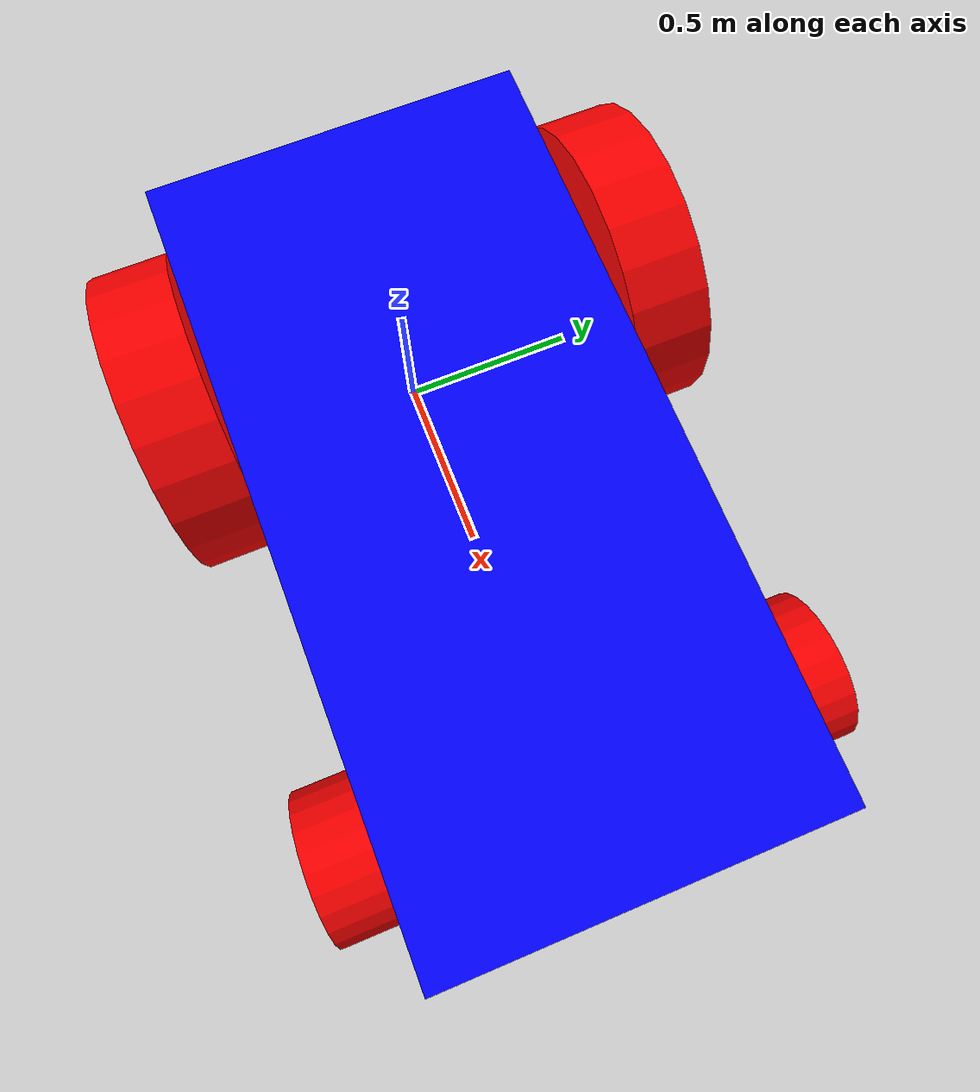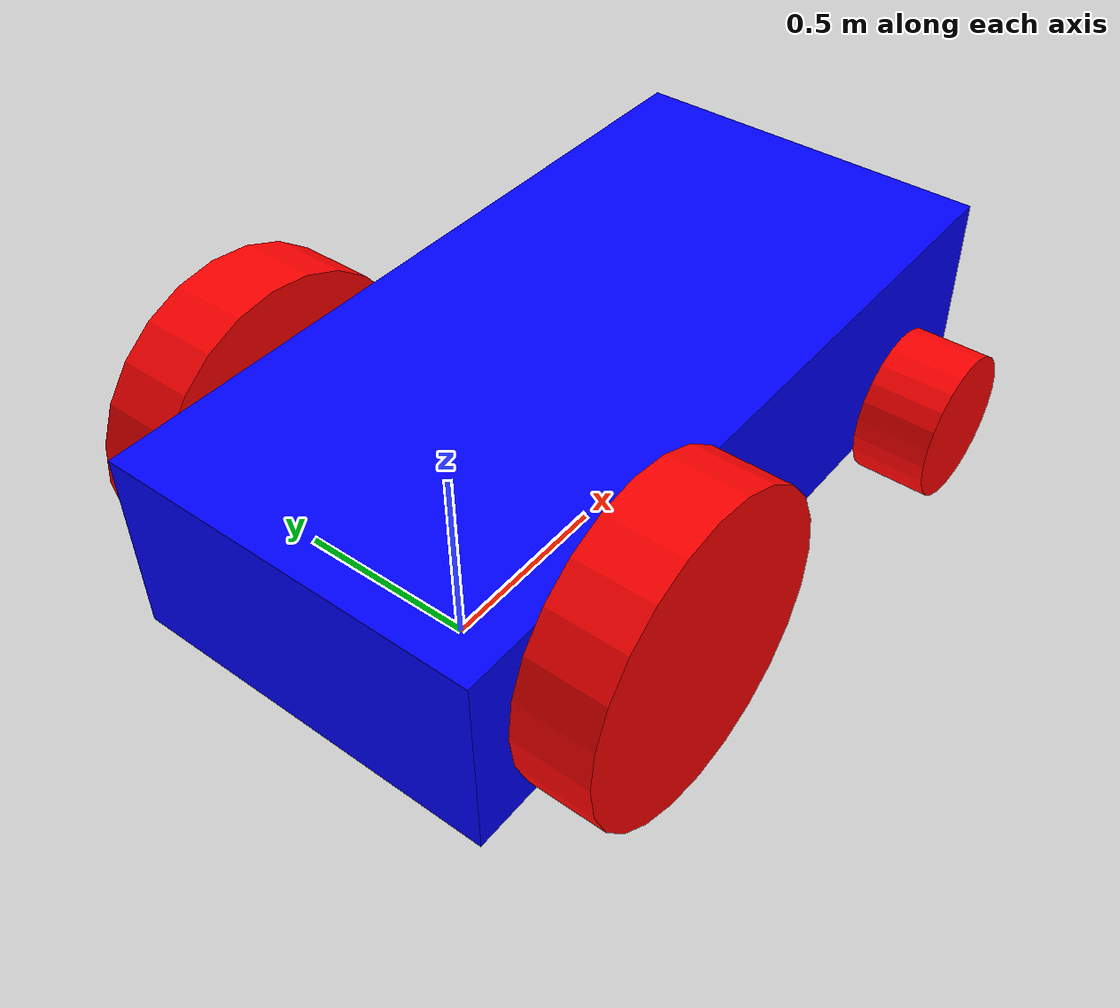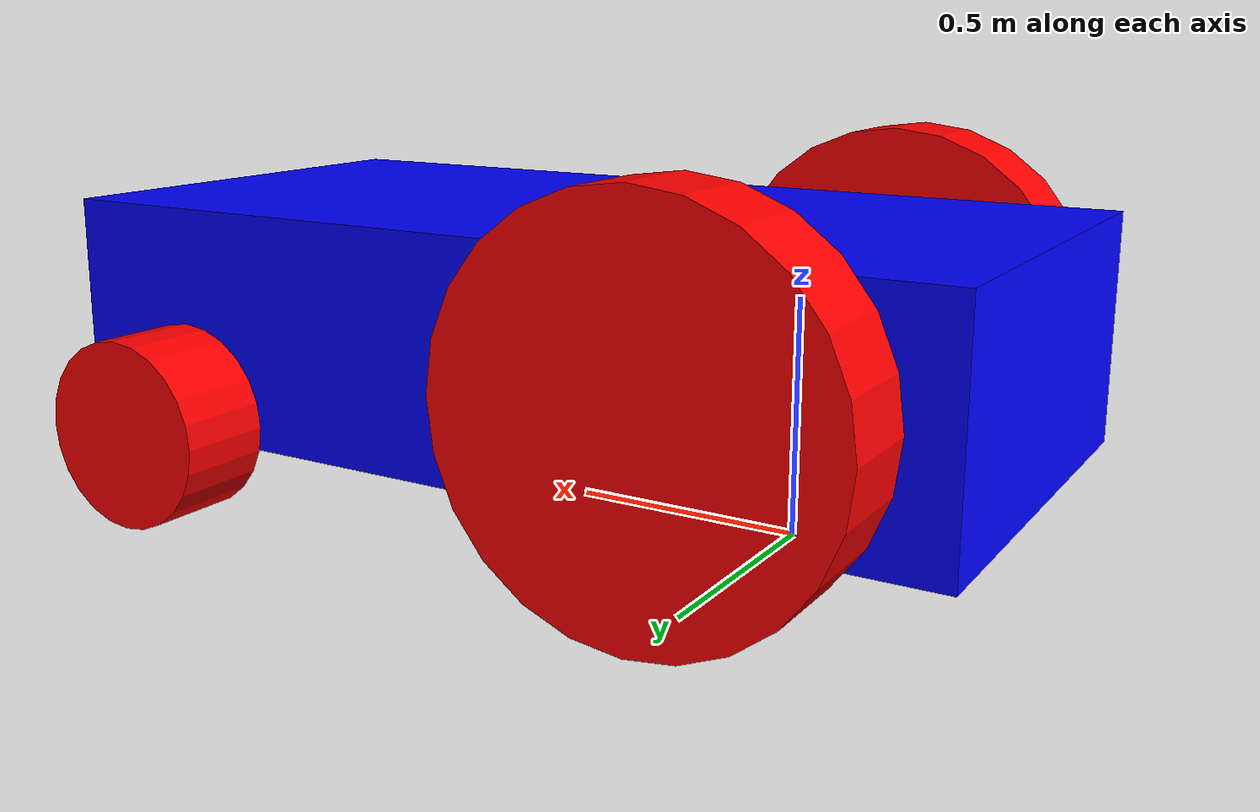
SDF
<?xml version="1.0"?>
<sdf version="1.10">
    <model name='vehicle_blue' canonical_link='chassis'>
        <plugin filename="gz-sim-joint-state-publisher-system"
            name="gz::sim::systems::JointStatePublisher">
            <topic>joint_states</topic>
            <joint_name>right_wheel_joint</joint_name>
            <joint_name>left_wheel_joint</joint_name>
            <joint_name>front_left_wheel_joint</joint_name>
            <joint_name>front_right_wheel_joint</joint_name>
        </plugin>
        <plugin
            filename="gz-sim-diff-drive-system"
            name="gz::sim::systems::DiffDrive">
            <left_joint>left_wheel_joint</left_joint>
            <right_joint>right_wheel_joint</right_joint>
            <wheel_separation>1.2</wheel_separation>
            <wheel_radius>0.4</wheel_radius>
            <odom_publish_frequency>1</odom_publish_frequency>
            <topic>cmd_vel</topic>
        </plugin>
        <plugin filename="gz-sim-imu-system"
            name="gz::sim::systems::Imu">
        </plugin>
        <!--chassis-->
        <link name='chassis'>
            <pose relative_to='__model__'>0.5 0 0.4 0 0 0</pose>
            <inertial> <!--inertial
            properties of the link mass, inertia matix-->
                <mass>10.14395</mass>
                <inertia>
                    <ixx>0.095329</ixx>
                    <ixy>0</ixy>
                    <ixz>0</ixz>
                    <iyy>0.381317</iyy>
                    <iyz>0</iyz>
                    <izz>0.476646</izz>
                </inertia>
            </inertial>
            <visual name='visual'>
                <geometry>
                    <box>
                        <size>2.0 1.0 0.5</size>
                    </box>
                </geometry>
                <!--Color
            of the link-->
                <material>
                    <ambient>0.0 0.0 1.0 1</ambient>
                    <diffuse>0.0 0.0 1.0 1</diffuse>
                    <specular>0.0 0.0 1.0 1</specular>
                </material>
            </visual>
            <collision name='collision'>
                <geometry>
                    <box>
                        <size>2.0 1.0 0.5</size>
                    </box>
                </geometry>
            </collision>
        </link>

        <!--Left
    wheel-->
        <link name='left_wheel'>
            <pose relative_to="chassis">-0.5 0.6 0 -1.5707 0 0</pose> <!--angles
        are in radian-->
            <inertial>
                <mass>2</mass>
                <inertia>
                    <ixx>0.043333</ixx>
                    <ixy>0</ixy>
                    <ixz>0</ixz>
                    <iyy>0.043333</iyy>
                    <iyz>0</iyz>
                    <izz>0.08</izz>
                </inertia>
            </inertial>
            <visual name='visual'>
                <geometry>
                    <cylinder>
                        <radius>0.4</radius>
                        <length>0.2</length>
                    </cylinder>
                </geometry>
                <material>
                    <ambient>1.0 0.0 0.0 1</ambient>
                    <diffuse>1.0 0.0 0.0 1</diffuse>
                    <specular>1.0 0.0 0.0 1</specular>
                </material>
            </visual>
            <collision name='collision'>
                <geometry>
                    <cylinder>
                        <radius>0.4</radius>
                        <length>0.2</length>
                    </cylinder>
                </geometry>
            </collision>
        </link>

        <!--The
    same as left wheel but with different position-->
        <link name='right_wheel'>
            <pose relative_to="chassis">-0.5 -0.6 0 -1.5707 0 0</pose> <!--angles
        are in radian-->
            <inertial>
                <mass>2</mass>
                <inertia>
                    <ixx>0.043333</ixx>
                    <ixy>0</ixy>
                    <ixz>0</ixz>
                    <iyy>0.043333</iyy>
                    <iyz>0</iyz>
                    <izz>0.08</izz>
                </inertia>
            </inertial>
            <visual name='visual'>
                <geometry>
                    <cylinder>
                        <radius>0.4</radius>
                        <length>0.2</length>
                    </cylinder>
                </geometry>
                <material>
                    <ambient>1.0 0.0 0.0 1</ambient>
                    <diffuse>1.0 0.0 0.0 1</diffuse>
                    <specular>1.0 0.0 0.0 1</specular>
                </material>
            </visual>
            <collision name='collision'>
                <geometry>
                    <cylinder>
                        <radius>0.4</radius>
                        <length>0.2</length>
                    </cylinder>
                </geometry>
            </collision>
        </link>

            <!--Left
    wheel-->
        <link name='front_left_wheel'>
            <pose relative_to="chassis">0.7 0.6 -0.2 -1.5707 0 0</pose> <!--angles
        are in radian-->
            <inertial>
                <mass>2</mass>
                <inertia>
                    <ixx>0.043333</ixx>
                    <ixy>0</ixy>
                    <ixz>0</ixz>
                    <iyy>0.043333</iyy>
                    <iyz>0</iyz>
                    <izz>0.08</izz>
                </inertia>
            </inertial>
            <visual name='visual'>
                <geometry>
                    <cylinder>
                        <radius>0.2</radius>
                        <length>0.2</length>
                    </cylinder>
                </geometry>
                <material>
                    <ambient>1.0 0.0 0.0 1</ambient>
                    <diffuse>1.0 0.0 0.0 1</diffuse>
                    <specular>1.0 0.0 0.0 1</specular>
                </material>
            </visual>
            <collision name='collision'>
                <geometry>
                    <cylinder>
                        <radius>0.2</radius>
                        <length>0.2</length>
                    </cylinder>
                </geometry>
            </collision>
        </link>

        <!--The
    same as left wheel but with different position-->
        <link name='front_right_wheel'>
            <pose relative_to="chassis">0.7 -0.6 -0.2 -1.5707 0 0</pose> <!--angles
        are in radian-->
            <inertial>
                <mass>2</mass>
                <inertia>
                    <ixx>0.043333</ixx>
                    <ixy>0</ixy>
                    <ixz>0</ixz>
                    <iyy>0.043333</iyy>
                    <iyz>0</iyz>
                    <izz>0.08</izz>
                </inertia>
            </inertial>
            <visual name='visual'>
                <geometry>
                    <cylinder>
                        <radius>0.2</radius>
                        <length>0.2</length>
                    </cylinder>
                </geometry>
                <material>
                    <ambient>1.0 0.0 0.0 1</ambient>
                    <diffuse>1.0 0.0 0.0 1</diffuse>
                    <specular>1.0 0.0 0.0 1</specular>
                </material>
            </visual>
            <collision name='collision'>
                <geometry>
                    <cylinder>
                        <radius>0.2</radius>
                        <length>0.2</length>
                    </cylinder>
                </geometry>
            </collision>
        </link>

        <link name="IMU_MTI_680g_Link">
            <sensor name="imu_sensor" type="imu">
                <always_on>1</always_on>
                <update_rate>10</update_rate>
                <visualize>true</visualize>
                <topic>imu</topic>
            </sensor>
        </link>

        <joint name="imu_joint" type="fixed">
            <parent>chassis</parent>
            <child>IMU_MTI_680g_Link</child>
            <pose relative_to='chassis'>
                2 0 0 0 0 0
            </pose>
        </joint>

        <!--left
    wheel joint-->
        <joint name='left_wheel_joint' type='revolute'>
            <pose relative_to='left_wheel' />
            <parent>chassis</parent>
            <child>left_wheel</child>
            <axis>
                <xyz expressed_in='__model__'>0 1 0</xyz> <!--can
            be descired to any frame or even arbitrary frames-->
                <limit>
                    <lower>-1.79769e+308</lower>    <!--negative
                infinity-->
                    <upper>1.79769e+308</upper>     <!--positive
                infinity-->
                </limit>
            </axis>
        </joint>

        <!--right
    wheel joint-->
        <joint name='right_wheel_joint' type='revolute'>
            <pose relative_to='right_wheel' />
            <parent>chassis</parent>
            <child>right_wheel</child>
            <axis>
                <xyz expressed_in='__model__'>0 1 0</xyz>
                <limit>
                    <lower>-1.79769e+308</lower>    <!--negative
                infinity-->
                    <upper>1.79769e+308</upper>     <!--positive
                infinity-->
                </limit>
            </axis>
        </joint>

        <!--left
    wheel joint-->
        <joint name='front_left_wheel_joint' type='revolute'>
            <pose relative_to='front_left_wheel' />
            <parent>chassis</parent>
            <child>front_left_wheel</child>
            <axis>
                <xyz expressed_in='__model__'>0 1 0</xyz> <!--can
            be descired to any frame or even arbitrary frames-->
                <limit>
                    <lower>-1.79769e+308</lower>    <!--negative
                infinity-->
                    <upper>1.79769e+308</upper>     <!--positive
                infinity-->
                </limit>
            </axis>
        </joint>

        <!--right
    wheel joint-->
        <joint name='front_right_wheel_joint' type='revolute'>
            <pose relative_to='front_right_wheel' />
            <parent>chassis</parent>
            <child>front_right_wheel</child>
            <axis>
                <xyz expressed_in='__model__'>0 1 0</xyz>
                <limit>
                    <lower>-1.79769e+308</lower>    <!--negative
                infinity-->
                    <upper>1.79769e+308</upper>     <!--positive
                infinity-->
                </limit>
            </axis>
        </joint>

    </model>
</sdf>
